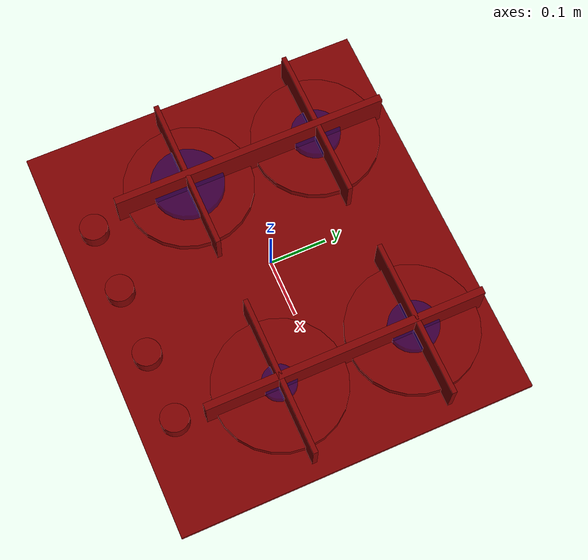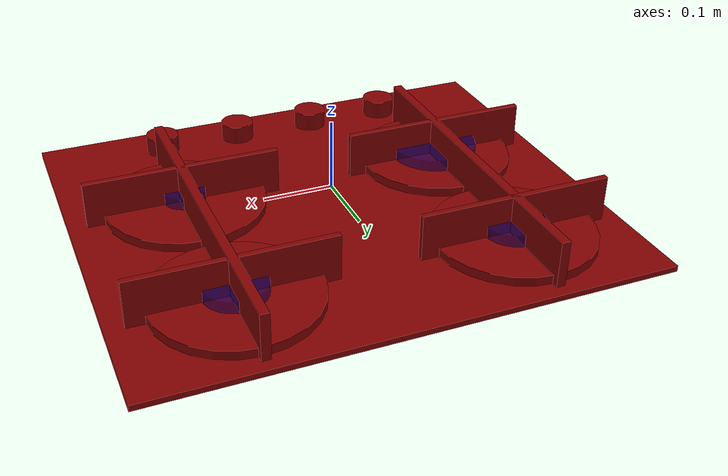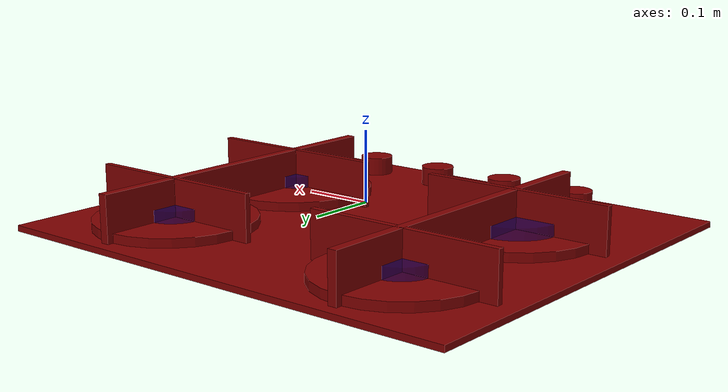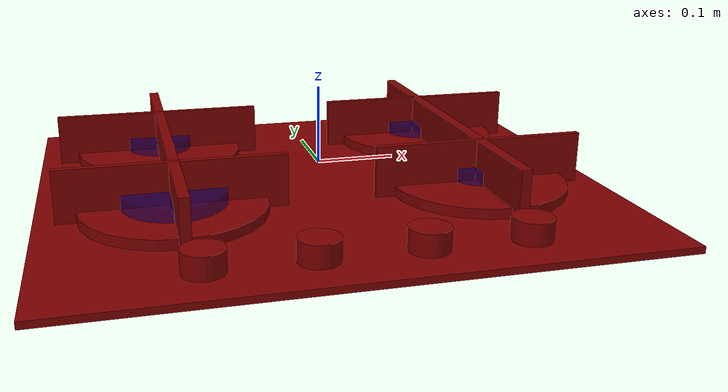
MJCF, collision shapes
<mujoco model="model">
  <compiler angle="radian"/>
  <asset>
    <mesh file="visuals/knob_front_left.obj" name="knob_front_left_vis"/>
    <mesh file="visuals/knob_front_right.obj" name="knob_front_right_vis"/>
    <mesh file="visuals/knob_rear_left.obj" name="knob_rear_left_vis"/>
    <mesh file="visuals/knob_rear_right.obj" name="knob_rear_right_vis"/>
    <mesh file="visuals/Body001.obj" name="Body001_vis"/>
    <texture file="visuals/T_BC001.png" name="Body001_material" type="2d"/>
    <material name="Body001_material" rgba="1 1 1 1.0" texture="Body001_material" shininess="0.141421377658844" specular="1"/>
    <texture file="visuals/T_BC001.png" name="knob_front_left_material" type="2d"/>
    <material name="knob_front_left_material" rgba="1 1 1 1.0" texture="knob_front_left_material" shininess="0.141421377658844" specular="1"/>
    <texture file="visuals/T_BC001.png" name="knob_front_right_material" type="2d"/>
    <material name="knob_front_right_material" rgba="1 1 1 1.0" texture="knob_front_right_material" shininess="0.141421377658844" specular="1"/>
    <texture file="visuals/T_BC001.png" name="knob_rear_left_material" type="2d"/>
    <material name="knob_rear_left_material" rgba="1 1 1 1.0" texture="knob_rear_left_material" shininess="0.141421377658844" specular="1"/>
    <texture file="visuals/T_BC001.png" name="knob_rear_right_material" type="2d"/>
    <material name="knob_rear_right_material" rgba="1 1 1 1.0" texture="knob_rear_right_material" shininess="0.141421377658844" specular="1"/>
  </asset>
  <default>
    <default class="visual">
      <geom conaffinity="0" contype="0" group="1" type="mesh"/>
    </default>
    <default class="collision">
      <geom group="0" rgba="0.5 0 0 0.5"/>
    </default>
    <default class="spawn">
      <geom group="0" rgba="1 1 1 0.5" contype="0" conaffinity="0"/>
      <site group="0" rgba="1 1 1 0.5"/>
    </default>
    <default class="region">
      <geom group="1" conaffinity="0" contype="0" rgba="0 1 0 0"/>
    </default>
  </default>
  <worldbody>
    <body>
      <body name="object">
        <site type="cylinder" rgba="0 0 0.5 0.5" size="0.06417527049779892 0.00958465225994587" pos="-0.19492430984973907 -0.07071972638368607 -0.009575685486197472" name="burner_on_front_left"/>
        <site type="cylinder" rgba="0 0 0.5 0.5" size="0.02967775985598564 0.009584653191268444" pos="0.19523943960666656 -0.07032167166471481 -0.009575685486197472" name="burner_on_front_right"/>
        <site type="cylinder" rgba="0 0 0.5 0.5" size="0.043561361730098724 0.00958465039730072" pos="-0.195414200425148 0.171766459941864 -0.009575685486197472" name="burner_on_rear_left"/>
        <site type="cylinder" rgba="0 0 0.5 0.5" size="0.04345513880252838 0.00958465225994587" pos="0.19554978609085083 0.17164233326911926 -0.009575685486197472" name="burner_on_rear_right"/>
        <geom mesh="Body001_vis" type="mesh" solimp="0.998 0.998 0.001" solref="0.001 1" density="100" friction="0.95 0.3 0.1" class="visual" material="Body001_material"/>
        <geom class="collision" type="box" pos="6.405486783478409e-05 -7.178634405136108e-06 -0.03378351777791977" size="0.3604230582714081 0.3106940984725952 0.0042423065751791" quat="1.0 0.0 0.0 0.0"/>
        <geom class="collision" type="box" pos="0.19548839330673218 0.17175669968128204 0.0032669128850102425" size="0.13925179839134216 0.004216452594846487 0.03350461646914482" quat="1.0 0.0 0.0 0.0"/>
        <geom class="collision" type="box" pos="0.19548839330673218 -0.0701482817530632 0.0032669128850102425" size="0.13925179839134216 0.004216452594846487 0.03350461646914482" quat="1.0 0.0 0.0 0.0"/>
        <geom class="collision" type="box" pos="0.196867436170578 0.046328701078891754 0.0032669128850102425" size="0.006412392016500235 0.24745294451713562 0.03350461646914482" quat="1.0 0.0 0.0 0.0"/>
        <geom class="collision" type="box" pos="-0.1939706951379776 0.046328701078891754 0.0032669128850102425" size="0.006412392016500235 0.24745294451713562 0.03350461646914482" quat="1.0 0.0 0.0 0.0"/>
        <geom class="collision" type="box" pos="-0.19534973800182343 -0.0701482817530632 0.0032669128850102425" size="0.13925179839134216 0.004216452594846487 0.03350461646914482" quat="1.0 0.0 0.0 0.0"/>
        <geom class="collision" type="box" pos="-0.19534973800182343 0.17175669968128204 0.0032669128850102425" size="0.13925179839134216 0.004216452594846487 0.03350461646914482" quat="1.0 0.0 0.0 0.0"/>
        <geom class="collision" type="cylinder" pos="0.19514229893684387 0.17101678252220154 -0.024690406396985054" size="0.11448579281568527 0.00810518953949213" quat="5.52335052361741e-07 0.0 0.0 1.0"/>
        <geom class="collision" type="cylinder" pos="0.19514229893684387 -0.06926890462636948 -0.024690406396985054" size="0.11448579281568527 0.00810518953949213" quat="5.52335052361741e-07 0.0 0.0 1.0"/>
        <geom class="collision" type="cylinder" pos="-0.19569584727287292 -0.06926890462636948 -0.024690406396985054" size="0.11448579281568527 0.00810518953949213" quat="5.52335052361741e-07 0.0 0.0 1.0"/>
        <geom class="collision" type="cylinder" pos="-0.19569584727287292 0.17101678252220154 -0.024690406396985054" size="0.11448579281568527 0.00810518953949213" quat="5.52335052361741e-07 0.0 0.0 1.0"/>
        <body name="knob_front_left">
          <joint axis="0.0 0.0 1.0" pos="-0.18137702345848083 -0.24864643812179565 -0.01627637818455696" limited="true" name="knob_front_left_joint" range="0.0 3.490658503988659" type="hinge" damping="0.05" armature="0.001"/>
          <geom mesh="knob_front_left_vis" type="mesh" solimp="0.998 0.998 0.001" solref="0.001 1" density="100" friction="0.95 0.3 0.1" class="visual" material="knob_front_left_material"/>
          <geom class="collision" type="cylinder" pos="-0.18159569799900055 -0.24865499138832092 -0.014493771828711033" size="0.02433723397552967 0.013514897786080837" quat="1.0 0.0 0.0 0.0"/>
        </body>
        <body name="knob_front_right">
          <joint axis="0.0 0.0 1.0" pos="0.18315564095973969 -0.24864643812179565 -0.01627637818455696" limited="true" name="knob_front_right_joint" range="0.0 3.490658503988659" type="hinge" damping="0.05" armature="0.001"/>
          <geom mesh="knob_front_right_vis" type="mesh" solimp="0.998 0.998 0.001" solref="0.001 1" density="100" friction="0.95 0.3 0.1" class="visual" material="knob_front_right_material"/>
          <geom class="collision" type="cylinder" pos="0.18295951187610626 -0.24865499138832092 -0.014493771828711033" size="0.02433723397552967 0.013514897786080837" quat="1.0 0.0 0.0 0.0"/>
        </body>
        <body name="knob_rear_left">
          <joint axis="0.0 0.0 1.0" pos="-0.060396090149879456 -0.24864643812179565 -0.01627637818455696" limited="true" name="knob_rear_left_joint" range="0.0 3.490658503988659" type="hinge" damping="0.05" armature="0.001"/>
          <geom mesh="knob_rear_left_vis" type="mesh" solimp="0.998 0.998 0.001" solref="0.001 1" density="100" friction="0.95 0.3 0.1" class="visual" material="knob_rear_left_material"/>
          <geom class="collision" type="cylinder" pos="-0.06052945926785469 -0.24865499138832092 -0.014493771828711033" size="0.02433723397552967 0.013514897786080837" quat="1.0 0.0 0.0 0.0"/>
        </body>
        <body name="knob_rear_right">
          <joint axis="0.0 0.0 1.0" pos="0.062026556581258774 -0.24864643812179565 -0.01627637818455696" limited="true" name="knob_rear_right_joint" range="0.0 3.490658503988659" type="hinge" damping="0.05" armature="0.001"/>
          <geom mesh="knob_rear_right_vis" type="mesh" solimp="0.998 0.998 0.001" solref="0.001 1" density="100" friction="0.95 0.3 0.1" class="visual" material="knob_rear_right_material"/>
          <geom class="collision" type="cylinder" pos="0.06192377954721451 -0.24865499138832092 -0.014493771828711033" size="0.02433723397552967 0.013514897786080837" quat="1.0 0.0 0.0 0.0"/>
        </body>
        <geom class="region" name="reg_main" type="box" pos="7.450580596923828e-09 0.0 -0.03358909860253334" size="0.3602842688560486 0.3107990026473999 0.0030535561963915825"/>
      </body>
    </body>
  </worldbody>
  <actuator>
    <motor name="knob_front_left_joint_actuator" joint="knob_front_left_joint" gear="10"/>
    <motor name="knob_front_right_joint_actuator" joint="knob_front_right_joint" gear="10"/>
    <motor name="knob_rear_left_joint_actuator" joint="knob_rear_left_joint" gear="10"/>
    <motor name="knob_rear_right_joint_actuator" joint="knob_rear_right_joint" gear="10"/>
  </actuator>
</mujoco>
